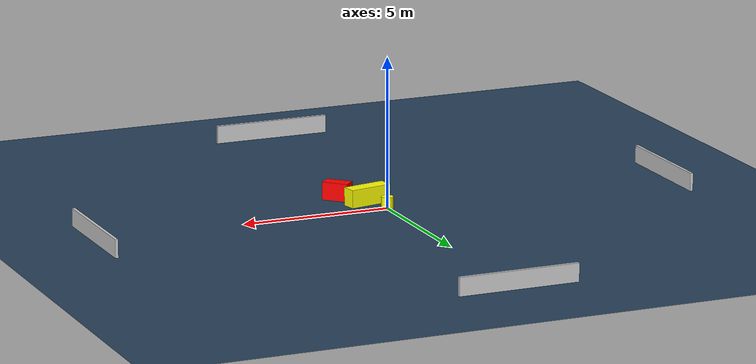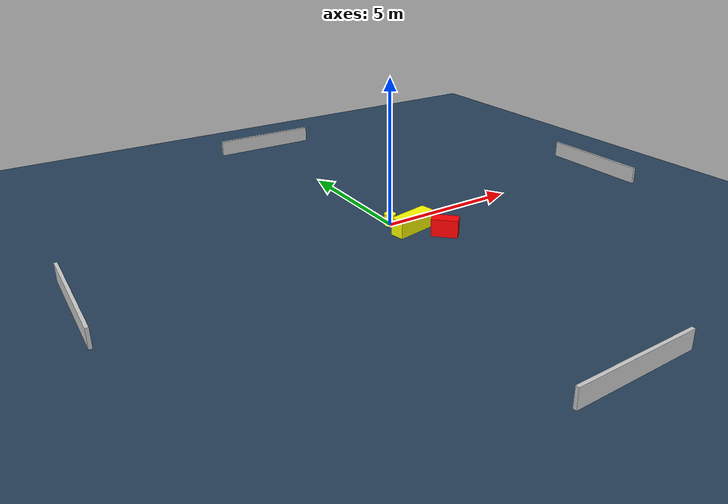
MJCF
<?xml version="1.0" ?>
<mujoco model="generated_environment">
  <option timestep="0.01" integrator="RK4" cone="elliptic"/>
  <default>
    <geom density="1"/>
  </default>
  <asset>
    <texture builtin="gradient" height="3072" name="skybox" rgb1="0.3 0.5 0.7" rgb2="0 0 0" type="skybox" width="512"/>
    <texture builtin="checker" height="300" name="groundplane" rgb1="0.2 0.3 0.4" rgb2="0.1 0.2 0.3" type="2d" width="300"/>
    <material name="groundplane" reflectance="0.2" texrepeat="5 5" texture="groundplane"/>
  </asset>
  <worldbody>
    <light dir="0 0 -1" directional="true" pos="0 0 1.5"/>
    <geom condim="3" friction="0.5 0.005 0.001" material="groundplane" name="floor" pos="0 0 0" size="0 0 0.05" type="plane"/>
    <body name="walls">
      <geom name="wall_1" condim="4" pos="-10.0 0.0 0.3" rgba="0.800000011920929 0.800000011920929 0.800000011920929 1.0" size="0.05 2.0 0.3" type="box"/>
      <geom name="wall_2" condim="4" pos="10.0 0.0 0.3" rgba="0.800000011920929 0.800000011920929 0.800000011920929 1.0" size="0.05 2.0 0.3" type="box"/>
      <geom name="wall_3" condim="4" pos="0.0 -10.0 0.3" rgba="0.800000011920929 0.800000011920929 0.800000011920929 1.0" size="2.0 0.05 0.3" type="box"/>
      <geom name="wall_4" condim="4" pos="0.0 10.0 0.3" rgba="0.800000011920929 0.800000011920929 0.800000011920929 1.0" size="2.0 0.05 0.3" type="box"/>
    </body>
    <body name="robot">
      <joint name="joint_x" type="slide" pos="0 0 0" axis="1 0 0"/>
      <joint name="joint_y" type="slide" pos="0 0 0" axis="0 1 0"/>
      <geom name="robot" type="cylinder" pos="0.0 0.0 0.2" size="0.2 0.2 0.0" mass="5.0" friction="1.0 0.005 0.0001" condim="4" rgba="1.0 1.0 0.0 1.0"/>
    </body>
    <body name="obstacle_1_movable">
      <geom name="obstacle_1_movable" condim="4" pos="0.36307578089141174 -0.7897386775835563 0.3" euler="0 0 281.1705303085271" friction="0.0 0.005 0.001" rgba="1.0 1.0 0.0 1.0" size="0.2406099372208494 0.7333471216876772 0.3" type="box" mass="0.1"/>
      <joint type="free"/>
    </body>
    <body name="obstacle_2_static">
      <geom name="obstacle_2_static" condim="4" pos="1.0548953813860835 -1.6454182903367485 0.3" euler="0 0 315.0054929944301" friction="0.0 0.005 0.001" rgba="1.0 0.0 0.0 1.0" size="0.43972183629442885 0.22665209342011805 0.3" type="box"/>
    </body>
  </worldbody>
  <actuator>
    <motor name="actuator_x" joint="joint_x" gear="1" ctrlrange="-1 1"/>
    <motor name="actuator_y" joint="joint_y" gear="1" ctrlrange="-1 1"/>
  </actuator>
</mujoco>
